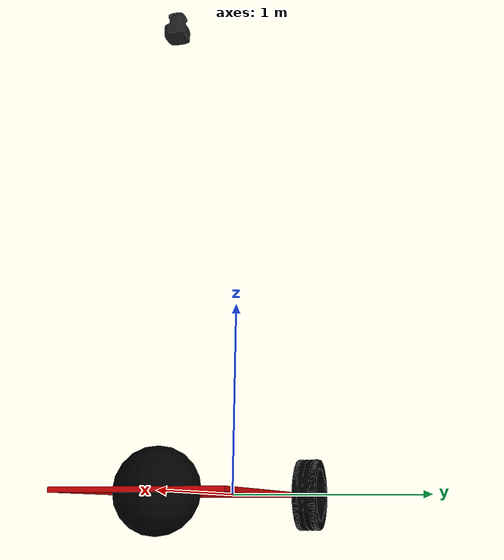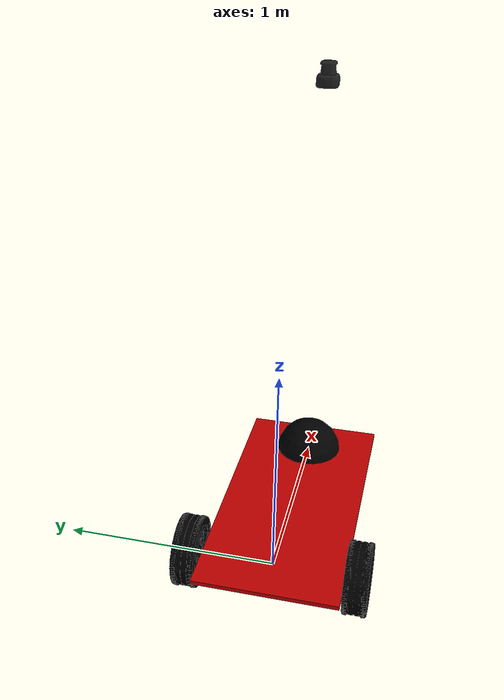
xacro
<?xml version="1.0"?>
<robot name="agent" xmlns:xacro="http://ros.org/wiki/xacro">

  <xacro:include filename="$(find tecna_turtle_description)/urdf/common_properties.xacro"/>
  <xacro:include filename="$(find tecna_turtle_description)/urdf/sensors/pf_r2000.urdf.xacro"/>

  <!-- properties -->

  <xacro:property name="chassis_width"  value="0.8"/>
  <xacro:property name="chassis_length" value="1.436"/>
  <xacro:property name="chassis_height" value="0.02"/>
  <xacro:property name="chassis_mass"   value="1"/>

  <xacro:property name="chassis_offset" value=".5"/> <!-- distance from rotation center of the vehicle to the chassis center -->
  <xacro:property name="caster_wheel_offset"   value="1.0"/> <!-- distance from rotation center of the vechicle to the caster wheel -->

  <xacro:property name="wheel_radius" value="0.171"/> <!-- ackermann_ctrlr_params.yaml must be also updated -->
  <xacro:property name="wheel_width"  value="0.114"/>
  <xacro:property name="wheel_mass"   value="1"/>

  <xacro:property name="lidar_x" value="1.0"/>
  <xacro:property name="lidar_y" value="0"/>
  <xacro:property name="lidar_z" value="2"/>

  <!-- macros -->

  <!-- tecna_turtle chassis -->
  <xacro:macro name="chassis">

    <!-- base_link -->
    <!-- TIP: link name conventions: http://www.ros.org/reps/rep-0105.html -->
    <link name="base_link">
      <visual>
        <!-- base_link must have geometry so that its axes can be displayed in rviz. -->
        <geometry>
          <box size="0.001 0.001 0.001"/>
        </geometry>
        <material name="white"/>
      </visual>
    </link>
    <gazebo reference="base_link">
      <material>Gazebo/Green</material>
    </gazebo>

    <!-- chassis -->
    <joint name="chassis_joint" type="fixed">
      <parent link="base_link"/>
      <child link="chassis"/>
      <origin xyz="${chassis_offset} 0 0" rpy="0 0 0"/>
    </joint>
    <link name="chassis">
      <visual>
        <geometry>
          <box size="${chassis_length} ${chassis_width-wheel_width} ${chassis_height}"/>
        </geometry>
        <material name="red"/>
      </visual>
      <collision>
        <geometry>
          <box size="${chassis_length} ${chassis_width-wheel_width} ${chassis_height}"/>
        </geometry>
      </collision>
      <xacro:solid_cuboid_inertial width="${chassis_width-wheel_width}" length="${chassis_length}" height="${chassis_height}" mass="${chassis_mass}"/>
    </link>
    <gazebo reference="chassis">
      <material>Gazebo/RedBright</material>
    </gazebo>

  </xacro:macro> <!-- tecna_turtle chassis -->

  <!-- caster wheel -->
  <xacro:macro name="caster_wheel">
    <joint name="caster_wheel_joint" type="fixed">
      <parent link="base_link"/>
      <child link="caster_wheel"/>
      <origin xyz = "${caster_wheel_offset} 0 0" rpy="0 0 0"/>
      <axis xyz="0 0 1"/>
    </joint>
    <link name="caster_wheel">
      <visual>
        <origin rpy="0 0 0"/>
        <geometry>
          <sphere radius="${wheel_radius}"/>
        </geometry>
        <material name="black"/>
      </visual>
      <collision>
        <geometry>
          <sphere radius="${wheel_radius}"/>
        </geometry>
      </collision>
    </link>
    <gazebo reference="caster_wheel">
      <material>Gazebo/DarkGrey</material>
    </gazebo>
  </xacro:macro> <!-- caster wheel -->

  <!-- wheel (left and right) -->
  <!-- lr_reflect {left: +1, right: -1} -->
  <xacro:macro name="wheel" params="lr_prefix lr_reflect">
    <joint name="${lr_prefix}_wheel_joint" type="continuous">
      <parent link="base_link"/>
      <child link="${lr_prefix}_wheel"/>
      <origin xyz = "0 ${lr_reflect*chassis_width/2} 0" rpy="${-degrees_90} 0 0"/>
      <axis xyz="0 0 1"/>
    </joint>
    <link name="${lr_prefix}_wheel">
      <visual>
        <origin rpy="${degrees_90 - lr_reflect * degrees_90} 0 0"/> <!-- right wheel is link left wheel on a mirror -->
        <geometry>
          <mesh filename="package://tecna_turtle_description/meshes/wheel.stl" scale="${wheel_radius} ${wheel_radius} ${wheel_width}"/>
        </geometry>
        <material name="black"/>
      </visual>
      <collision>
        <geometry>
          <cylinder length="${wheel_width}" radius="${wheel_radius}"/>
        </geometry>
      </collision>
      <xacro:thick_walled_tube_inertial outer_rad="${wheel_radius}" inner_rad="${wheel_radius/2}" height="${wheel_width}" mass="${wheel_mass}"/>
    </link>
    <gazebo reference="${lr_prefix}_wheel">
      <material>Gazebo/DarkGrey</material>
    </gazebo>
  </xacro:macro> <!-- wheel -->

  <!-- main -->

  <!-- vehicle -->
  <xacro:chassis/>
  <xacro:caster_wheel/>
  <xacro:wheel lr_prefix="left"  lr_reflect="+1"/>
  <xacro:wheel lr_prefix="right" lr_reflect="-1"/>
  <gazebo>
    <plugin name="tecna_turtle_controller" filename="libgazebo_ros_diff_drive.so">
      <commandTopic>cmd_vel</commandTopic>
      <odometryTopic>odom</odometryTopic>
      <odometryFrame>odom</odometryFrame>
      <odometrySource>world</odometrySource>
      <publishOdomTF>false</publishOdomTF>
      <robotBaseFrame>base_link</robotBaseFrame>
      <publishWheelTF>false</publishWheelTF>
      <publishTf>true</publishTf>
      <publishWheelJointState>true</publishWheelJointState>
      <legacyMode>false</legacyMode>
      <updateRate>30</updateRate>
      <leftJoint>left_wheel_joint</leftJoint>
      <rightJoint>right_wheel_joint</rightJoint>
      <wheelSeparation>${chassis_width}</wheelSeparation>
      <wheelDiameter>${2*wheel_radius}</wheelDiameter>
      <wheelAcceleration>1</wheelAcceleration>
      <wheelTorque>10</wheelTorque>
      <rosDebugLevel>na</rosDebugLevel>
    </plugin>
  </gazebo>

  <!-- lidar sensor -->
  <sensor_lidar_pf_r2000/>

</robot>

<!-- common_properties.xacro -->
<robot name="xacro_properties" xmlns:xacro="http://ros.org/wiki/xacro">

  <xacro:property name="degrees_45"  value="0.785398163"/>
  <xacro:property name="degrees_90"  value="1.57079633"/>
  <xacro:property name="degrees_180" value="3.1415926535897931"/>

  <material name="white">
    <color rgba="1.0 1.0 1.0 1.0"/>
  </material>

  <material name="black">
      <color rgba="0.0 0.0 0.0 1.0"/>
  </material>

  <material name="grey">
    <color rgba="0.5 0.5 0.5 1.0"/>
  </material>

  <material name="red">
    <color rgba="0.8 0.0 0.0 1.0"/>
  </material>

  <material name="green">
    <color rgba="0.0 0.8 0.0 1.0"/>
  </material>

  <material name="blue">
    <color rgba="0.0 0.0 0.8 1.0"/>
  </material>

  <!-- Null inertial element. Needed by Gazebo -->
  <xacro:macro name="null_inertial">
    <inertial>
      <mass value="0.001"/>
      <inertia ixx="0.001" ixy="0" ixz="0" iyy="0.001" iyz="0" izz="0.001"/>
    </inertial>
  </xacro:macro>

  <!--
  Inertia of a solid cuboid.
  Length is measured along the x axis, width along the y axis, and height along the z axis.
  -->
  <xacro:macro name="solid_cuboid_inertial"
               params="width length height mass">
    <inertial>
      <mass value="${mass}"/>
      <inertia ixx="${mass * (width * width + height * height) / 12}"
               ixy="0" ixz="0"
               iyy="${mass * (length * length + height * height) / 12}"
               iyz="0"
               izz="${mass * (width * width + length * length) / 12}"/>
    </inertial>
  </xacro:macro>

  <xacro:macro name="thick_walled_tube_inertial"
               params="outer_rad inner_rad height mass">
    <inertial>
      <mass value="${mass}"/>
      <inertia ixx="${(1 / 12) * mass * (3 * (inner_rad * inner_rad +
                    outer_rad * outer_rad) + height * height)}"
               ixy="0" ixz="0"
               iyy="${(1 / 12) * mass * (3 * (inner_rad * inner_rad +
                    outer_rad * outer_rad) + height * height)}"
               iyz="0"
               izz="${mass * (inner_rad * inner_rad +
                    outer_rad * outer_rad) / 2}"/>
    </inertial>
  </xacro:macro>

</robot>

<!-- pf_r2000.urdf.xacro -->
<robot name="sensor_lidar" xmlns:xacro="http://ros.org/wiki/xacro">
  <xacro:macro name="sensor_lidar_pf_r2000">

    <joint name="lidar_joint" type="fixed">
      <origin xyz="${lidar_x} ${lidar_y} ${lidar_z}"
              rpy="0 0 0"/>
      <parent link="base_link"/>
      <child link="lidar" />
    </joint>
    <link name="lidar">
      <visual>
        <origin xyz="0 0 0" rpy="0 0 0"/>
        <geometry>
          <mesh filename="package://tecna_turtle_description/meshes/pf_r2000.dae"/>
        </geometry>
      </visual>
    </link>

    <gazebo reference="lidar">
      <material>Gazebo/FlatBlack</material>
      <sensor type="ray" name="lds_lfcd_sensor">
        <visualize>true</visualize>
        <update_rate>50.0</update_rate>
        <ray>
          <scan>
            <horizontal>
              <samples>720</samples>
              <resolution>1</resolution>
              <min_angle>${-degrees_180}</min_angle>
              <max_angle>${+degrees_180}</max_angle>
            </horizontal>
          </scan>
          <range>
            <min>0.120</min>
            <max>30</max>
            <resolution>0.01</resolution>
          </range>
          <noise>
            <type>gaussian</type>
            <mean>0.0</mean>
            <stddev>0.01</stddev>
          </noise>
        </ray>
        <plugin name="gazebo_ros_lds_lfcd_controller" filename="libgazebo_ros_laser.so">
          <topicName>lidar/scan</topicName>
          <frameName>lidar</frameName>
        </plugin>
      </sensor>
    </gazebo>

  </xacro:macro>
</robot>
